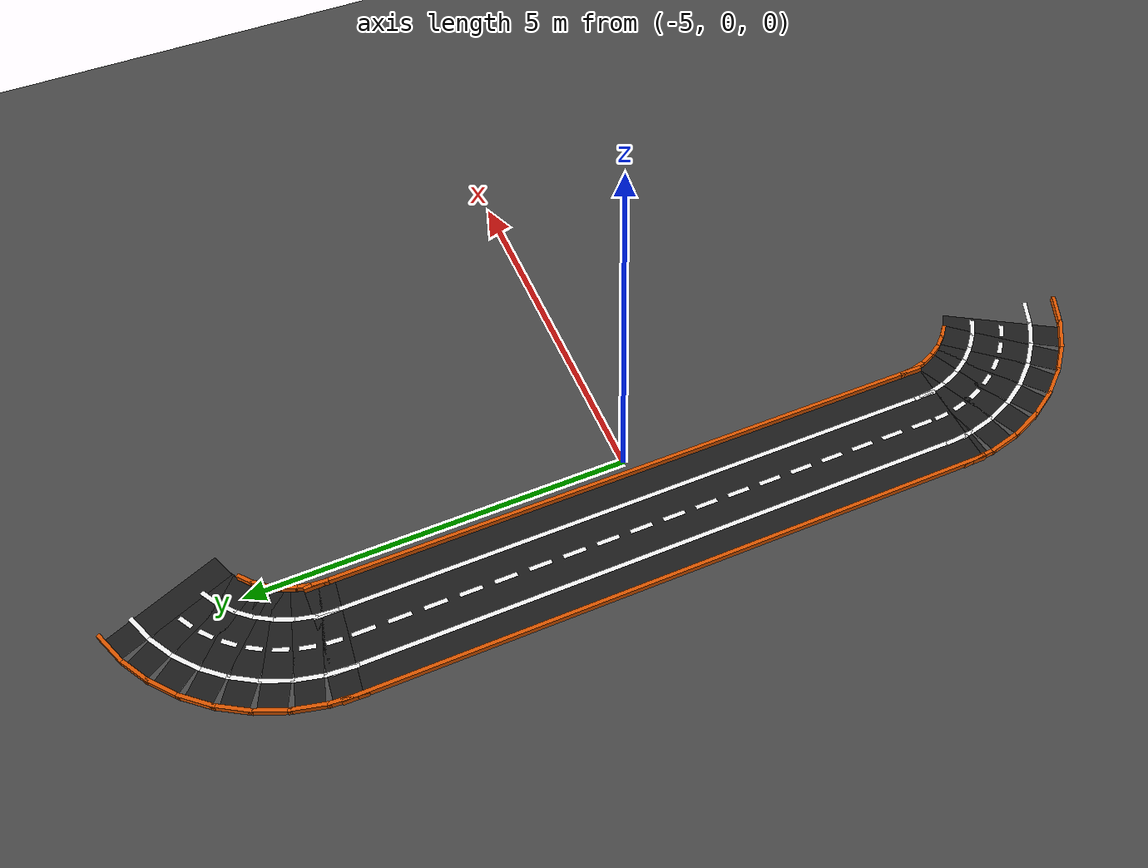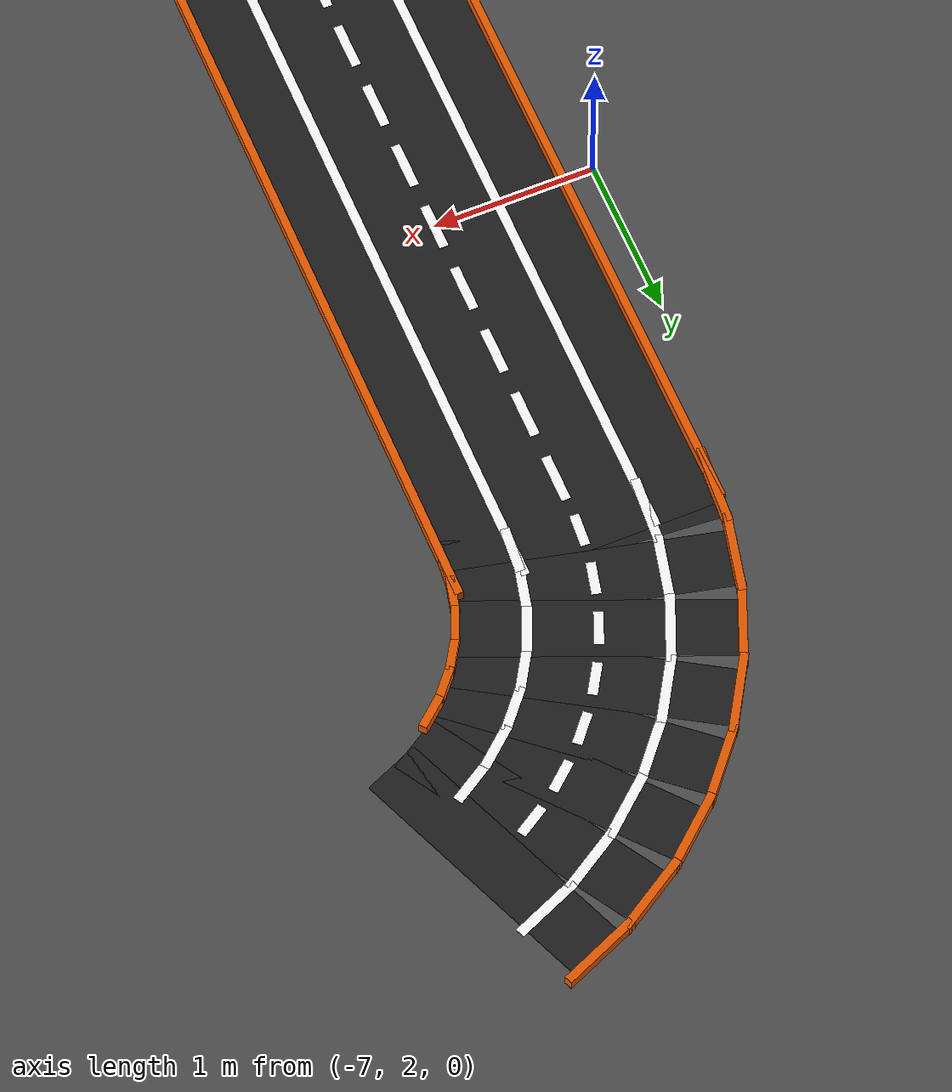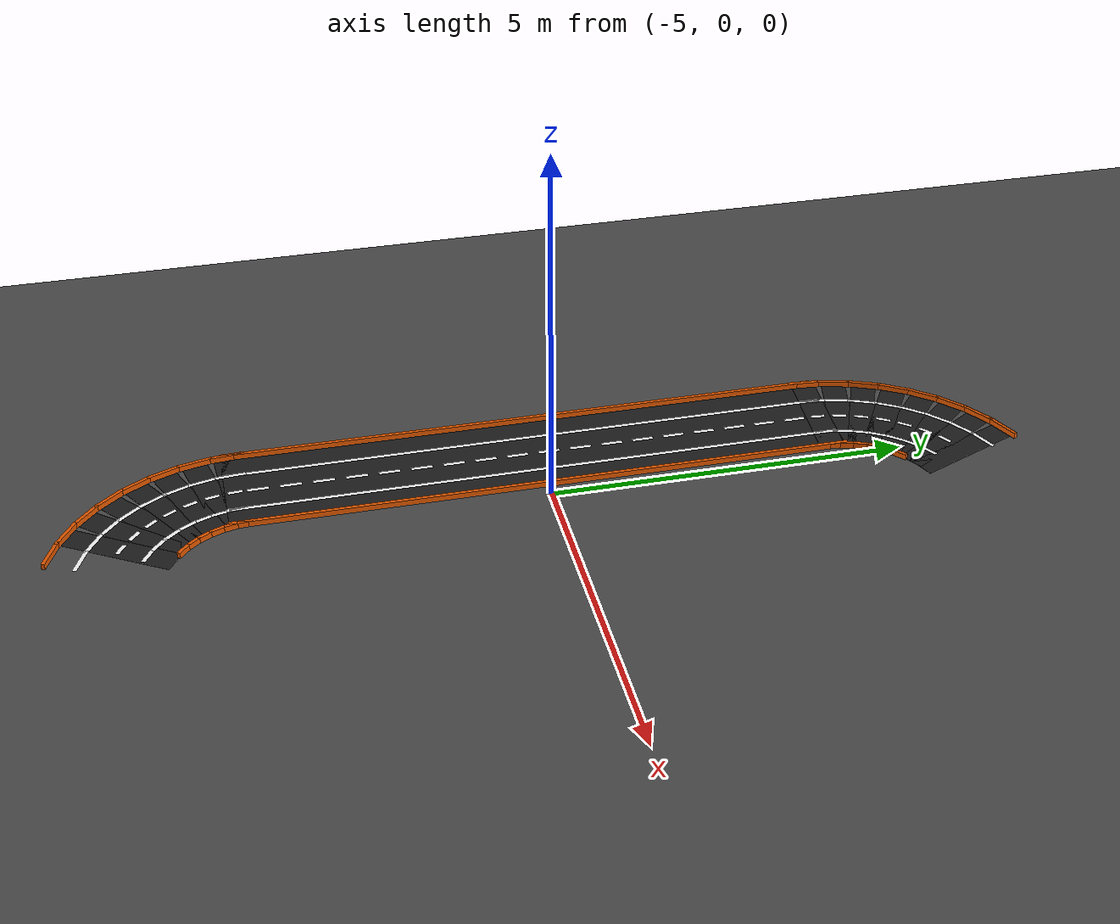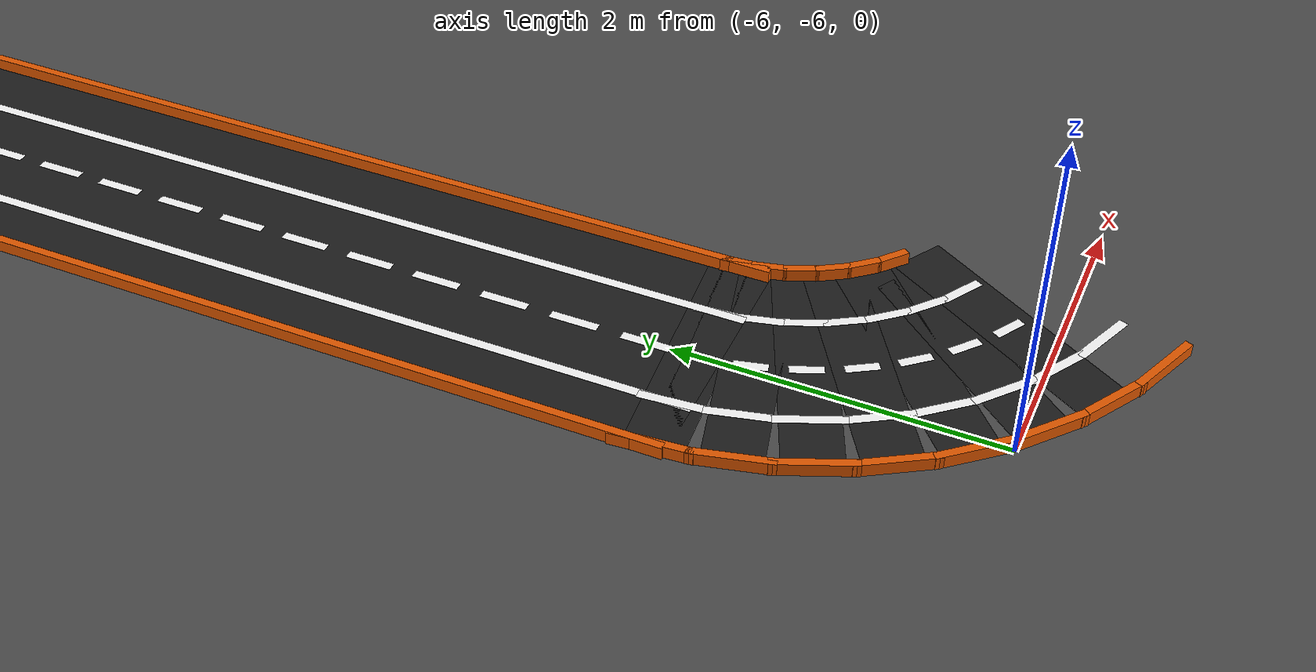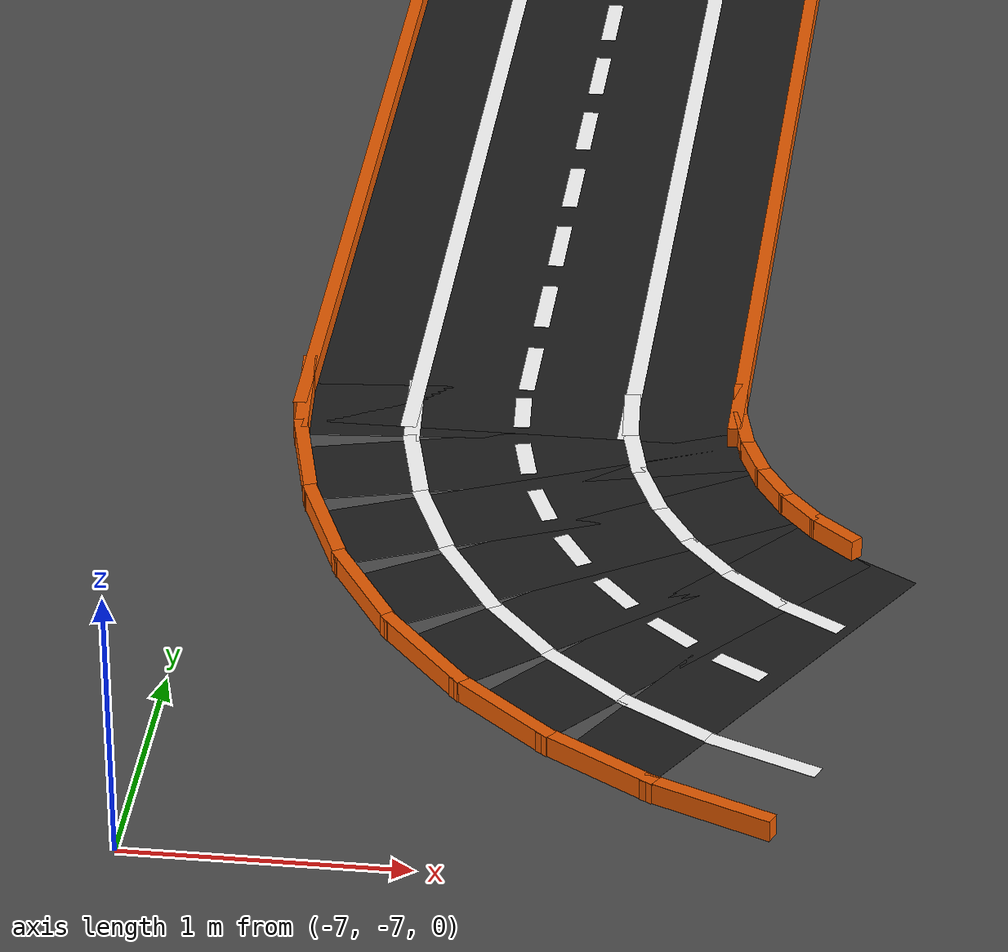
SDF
<sdf version="1.6">
 <world name="qcar_oval">
  <model name="ground_plane">
   <static>true</static>
   <link name="link">
    <collision name="collision">
     <geometry><plane><normal>0 0 1</normal><size>200 200</size></plane></geometry>
    </collision>
    <visual name="visual">
     <geometry><plane><normal>0 0 1</normal><size>200 200</size></plane></geometry>
     <material><ambient>0.3 0.3 0.3 1</ambient><diffuse>0.3 0.3 0.3 1</diffuse></material>
    </visual>
   </link>
  </model>
  <model name="m69">
   <static>true</static>
   <pose>-6.0000 0.0000 0.00100 0 0 0.00000</pose>
   <link name="l">
    <visual name="v">
     <geometry><box><size>1.6000 8.6000 0.0010</size></box></geometry>
     <material><ambient>0.12 0.12 0.12 1</ambient><diffuse>0.12 0.12 0.12 1</diffuse></material>
    </visual>
   </link>
  </model>
  <model name="m70">
   <static>true</static>
   <pose>-5.2000 0.0000 0.04000 0 0 0.00000</pose>
   <link name="l">
    <visual name="v">
     <geometry><box><size>0.0500 8.6000 0.0800</size></box></geometry>
     <material><ambient>0.9 0.35 0.0 1</ambient><diffuse>0.9 0.35 0.0 1</diffuse></material>
    </visual>
   </link>
  </model>
  <model name="m71">
   <static>true</static>
   <pose>-6.8000 0.0000 0.04000 0 0 0.00000</pose>
   <link name="l">
    <visual name="v">
     <geometry><box><size>0.0500 8.6000 0.0800</size></box></geometry>
     <material><ambient>0.9 0.35 0.0 1</ambient><diffuse>0.9 0.35 0.0 1</diffuse></material>
    </visual>
   </link>
  </model>
  <model name="m72">
   <static>true</static>
   <pose>-5.6000 0.0000 0.00200 0 0 0.00000</pose>
   <link name="l">
    <visual name="v">
     <geometry><box><size>0.0600 8.6000 0.0010</size></box></geometry>
     <material><ambient>1 1 1 1</ambient><diffuse>1 1 1 1</diffuse></material>
    </visual>
   </link>
  </model>
  <model name="m73">
   <static>true</static>
   <pose>-6.4000 0.0000 0.00200 0 0 0.00000</pose>
   <link name="l">
    <visual name="v">
     <geometry><box><size>0.0600 8.6000 0.0010</size></box></geometry>
     <material><ambient>1 1 1 1</ambient><diffuse>1 1 1 1</diffuse></material>
    </visual>
   </link>
  </model>
  <model name="m74">
   <static>true</static>
   <pose>-6.0000 -3.8500 0.00200 0 0 0.00000</pose>
   <link name="l">
    <visual name="v">
     <geometry><box><size>0.0600 0.3000 0.0010</size></box></geometry>
     <material><ambient>1 1 1 1</ambient><diffuse>1 1 1 1</diffuse></material>
    </visual>
   </link>
  </model>
  <model name="m75">
   <static>true</static>
   <pose>-6.0000 -3.4000 0.00200 0 0 0.00000</pose>
   <link name="l">
    <visual name="v">
     <geometry><box><size>0.0600 0.3000 0.0010</size></box></geometry>
     <material><ambient>1 1 1 1</ambient><diffuse>1 1 1 1</diffuse></material>
    </visual>
   </link>
  </model>
  <model name="m76">
   <static>true</static>
   <pose>-6.0000 -2.9500 0.00200 0 0 0.00000</pose>
   <link name="l">
    <visual name="v">
     <geometry><box><size>0.0600 0.3000 0.0010</size></box></geometry>
     <material><ambient>1 1 1 1</ambient><diffuse>1 1 1 1</diffuse></material>
    </visual>
   </link>
  </model>
  <model name="m77">
   <static>true</static>
   <pose>-6.0000 -2.5000 0.00200 0 0 0.00000</pose>
   <link name="l">
    <visual name="v">
     <geometry><box><size>0.0600 0.3000 0.0010</size></box></geometry>
     <material><ambient>1 1 1 1</ambient><diffuse>1 1 1 1</diffuse></material>
    </visual>
   </link>
  </model>
  <model name="m78">
   <static>true</static>
   <pose>-6.0000 -2.0500 0.00200 0 0 0.00000</pose>
   <link name="l">
    <visual name="v">
     <geometry><box><size>0.0600 0.3000 0.0010</size></box></geometry>
     <material><ambient>1 1 1 1</ambient><diffuse>1 1 1 1</diffuse></material>
    </visual>
   </link>
  </model>
  <model name="m79">
   <static>true</static>
   <pose>-6.0000 -1.6000 0.00200 0 0 0.00000</pose>
   <link name="l">
    <visual name="v">
     <geometry><box><size>0.0600 0.3000 0.0010</size></box></geometry>
     <material><ambient>1 1 1 1</ambient><diffuse>1 1 1 1</diffuse></material>
    </visual>
   </link>
  </model>
  <model name="m80">
   <static>true</static>
   <pose>-6.0000 -1.1500 0.00200 0 0 0.00000</pose>
   <link name="l">
    <visual name="v">
     <geometry><box><size>0.0600 0.3000 0.0010</size></box></geometry>
     <material><ambient>1 1 1 1</ambient><diffuse>1 1 1 1</diffuse></material>
    </visual>
   </link>
  </model>
  <model name="m81">
   <static>true</static>
   <pose>-6.0000 -0.7000 0.00200 0 0 0.00000</pose>
   <link name="l">
    <visual name="v">
     <geometry><box><size>0.0600 0.3000 0.0010</size></box></geometry>
     <material><ambient>1 1 1 1</ambient><diffuse>1 1 1 1</diffuse></material>
    </visual>
   </link>
  </model>
  <model name="m82">
   <static>true</static>
   <pose>-6.0000 -0.2500 0.00200 0 0 0.00000</pose>
   <link name="l">
    <visual name="v">
     <geometry><box><size>0.0600 0.3000 0.0010</size></box></geometry>
     <material><ambient>1 1 1 1</ambient><diffuse>1 1 1 1</diffuse></material>
    </visual>
   </link>
  </model>
  <model name="m83">
   <static>true</static>
   <pose>-6.0000 0.2000 0.00200 0 0 0.00000</pose>
   <link name="l">
    <visual name="v">
     <geometry><box><size>0.0600 0.3000 0.0010</size></box></geometry>
     <material><ambient>1 1 1 1</ambient><diffuse>1 1 1 1</diffuse></material>
    </visual>
   </link>
  </model>
  <model name="m84">
   <static>true</static>
   <pose>-6.0000 0.6500 0.00200 0 0 0.00000</pose>
   <link name="l">
    <visual name="v">
     <geometry><box><size>0.0600 0.3000 0.0010</size></box></geometry>
     <material><ambient>1 1 1 1</ambient><diffuse>1 1 1 1</diffuse></material>
    </visual>
   </link>
  </model>
  <model name="m85">
   <static>true</static>
   <pose>-6.0000 1.1000 0.00200 0 0 0.00000</pose>
   <link name="l">
    <visual name="v">
     <geometry><box><size>0.0600 0.3000 0.0010</size></box></geometry>
     <material><ambient>1 1 1 1</ambient><diffuse>1 1 1 1</diffuse></material>
    </visual>
   </link>
  </model>
  <model name="m86">
   <static>true</static>
   <pose>-6.0000 1.5500 0.00200 0 0 0.00000</pose>
   <link name="l">
    <visual name="v">
     <geometry><box><size>0.0600 0.3000 0.0010</size></box></geometry>
     <material><ambient>1 1 1 1</ambient><diffuse>1 1 1 1</diffuse></material>
    </visual>
   </link>
  </model>
  <model name="m87">
   <static>true</static>
   <pose>-6.0000 2.0000 0.00200 0 0 0.00000</pose>
   <link name="l">
    <visual name="v">
     <geometry><box><size>0.0600 0.3000 0.0010</size></box></geometry>
     <material><ambient>1 1 1 1</ambient><diffuse>1 1 1 1</diffuse></material>
    </visual>
   </link>
  </model>
  <model name="m88">
   <static>true</static>
   <pose>-6.0000 2.4500 0.00200 0 0 0.00000</pose>
   <link name="l">
    <visual name="v">
     <geometry><box><size>0.0600 0.3000 0.0010</size></box></geometry>
     <material><ambient>1 1 1 1</ambient><diffuse>1 1 1 1</diffuse></material>
    </visual>
   </link>
  </model>
  <model name="m89">
   <static>true</static>
   <pose>-6.0000 2.9000 0.00200 0 0 0.00000</pose>
   <link name="l">
    <visual name="v">
     <geometry><box><size>0.0600 0.3000 0.0010</size></box></geometry>
     <material><ambient>1 1 1 1</ambient><diffuse>1 1 1 1</diffuse></material>
    </visual>
   </link>
  </model>
  <model name="m90">
   <static>true</static>
   <pose>-6.0000 3.3500 0.00200 0 0 0.00000</pose>
   <link name="l">
    <visual name="v">
     <geometry><box><size>0.0600 0.3000 0.0010</size></box></geometry>
     <material><ambient>1 1 1 1</ambient><diffuse>1 1 1 1</diffuse></material>
    </visual>
   </link>
  </model>
  <model name="m91">
   <static>true</static>
   <pose>-6.0000 3.8000 0.00200 0 0 0.00000</pose>
   <link name="l">
    <visual name="v">
     <geometry><box><size>0.0600 0.3000 0.0010</size></box></geometry>
     <material><ambient>1 1 1 1</ambient><diffuse>1 1 1 1</diffuse></material>
    </visual>
   </link>
  </model>
  <model name="m224">
   <static>true</static>
   <pose>-4.7654 5.8478 0.00100 0 0 3.53429</pose>
   <link name="l">
    <visual name="v">
     <geometry><box><size>0.3519 1.6000 0.0010</size></box></geometry>
     <material><ambient>0.12 0.12 0.12 1</ambient><diffuse>0.12 0.12 0.12 1</diffuse></material>
    </visual>
   </link>
  </model>
  <model name="m226">
   <static>true</static>
   <pose>-5.0715 6.5869 0.04000 0 0 3.53429</pose>
   <link name="l">
    <visual name="v">
     <geometry><box><size>0.4926 0.0500 0.0800</size></box></geometry>
     <material><ambient>0.9 0.35 0.0 1</ambient><diffuse>0.9 0.35 0.0 1</diffuse></material>
    </visual>
   </link>
  </model>
  <model name="m228">
   <static>true</static>
   <pose>-4.9184 6.2173 0.00200 0 0 3.53429</pose>
   <link name="l">
    <visual name="v">
     <geometry><box><size>0.4222 0.0600 0.0010</size></box></geometry>
     <material><ambient>1 1 1 1</ambient><diffuse>1 1 1 1</diffuse></material>
    </visual>
   </link>
  </model>
  <model name="m230">
   <static>true</static>
   <pose>-5.0450 5.7053 0.00100 0 0 3.69137</pose>
   <link name="l">
    <visual name="v">
     <geometry><box><size>0.3519 1.6000 0.0010</size></box></geometry>
     <material><ambient>0.12 0.12 0.12 1</ambient><diffuse>0.12 0.12 0.12 1</diffuse></material>
    </visual>
   </link>
  </model>
  <model name="m232">
   <static>true</static>
   <pose>-5.4630 6.3874 0.04000 0 0 3.69137</pose>
   <link name="l">
    <visual name="v">
     <geometry><box><size>0.4926 0.0500 0.0800</size></box></geometry>
     <material><ambient>0.9 0.35 0.0 1</ambient><diffuse>0.9 0.35 0.0 1</diffuse></material>
    </visual>
   </link>
  </model>
  <model name="m233">
   <static>true</static>
   <pose>-4.8360 5.3642 0.00200 0 0 3.69137</pose>
   <link name="l">
    <visual name="v">
     <geometry><box><size>0.2815 0.0600 0.0010</size></box></geometry>
     <material><ambient>1 1 1 1</ambient><diffuse>1 1 1 1</diffuse></material>
    </visual>
   </link>
  </model>
  <model name="m234">
   <static>true</static>
   <pose>-5.2540 6.0463 0.00200 0 0 3.69137</pose>
   <link name="l">
    <visual name="v">
     <geometry><box><size>0.4222 0.0600 0.0010</size></box></geometry>
     <material><ambient>1 1 1 1</ambient><diffuse>1 1 1 1</diffuse></material>
    </visual>
   </link>
  </model>
  <model name="m235">
   <static>true</static>
   <pose>-5.0450 5.7053 0.00200 0 0 3.69137</pose>
   <link name="l">
    <visual name="v">
     <geometry><box><size>0.2042 0.0600 0.0010</size></box></geometry>
     <material><ambient>1 1 1 1</ambient><diffuse>1 1 1 1</diffuse></material>
    </visual>
   </link>
  </model>
  <model name="m236">
   <static>true</static>
   <pose>-5.2989 5.5208 0.00100 0 0 3.84845</pose>
   <link name="l">
    <visual name="v">
     <geometry><box><size>0.3519 1.6000 0.0010</size></box></geometry>
     <material><ambient>0.12 0.12 0.12 1</ambient><diffuse>0.12 0.12 0.12 1</diffuse></material>
    </visual>
   </link>
  </model>
  <model name="m237">
   <static>true</static>
   <pose>-4.7793 4.9125 0.04000 0 0 3.84845</pose>
   <link name="l">
    <visual name="v">
     <geometry><box><size>0.2111 0.0500 0.0800</size></box></geometry>
     <material><ambient>0.9 0.35 0.0 1</ambient><diffuse>0.9 0.35 0.0 1</diffuse></material>
    </visual>
   </link>
  </model>
  <model name="m238">
   <static>true</static>
   <pose>-5.8185 6.1291 0.04000 0 0 3.84845</pose>
   <link name="l">
    <visual name="v">
     <geometry><box><size>0.4926 0.0500 0.0800</size></box></geometry>
     <material><ambient>0.9 0.35 0.0 1</ambient><diffuse>0.9 0.35 0.0 1</diffuse></material>
    </visual>
   </link>
  </model>
  <model name="m239">
   <static>true</static>
   <pose>-5.0391 5.2166 0.00200 0 0 3.84845</pose>
   <link name="l">
    <visual name="v">
     <geometry><box><size>0.2815 0.0600 0.0010</size></box></geometry>
     <material><ambient>1 1 1 1</ambient><diffuse>1 1 1 1</diffuse></material>
    </visual>
   </link>
  </model>
  <model name="m240">
   <static>true</static>
   <pose>-5.5587 5.8250 0.00200 0 0 3.84845</pose>
   <link name="l">
    <visual name="v">
     <geometry><box><size>0.4222 0.0600 0.0010</size></box></geometry>
     <material><ambient>1 1 1 1</ambient><diffuse>1 1 1 1</diffuse></material>
    </visual>
   </link>
  </model>
  <model name="m241">
   <static>true</static>
   <pose>-5.2989 5.5208 0.00200 0 0 3.84845</pose>
   <link name="l">
    <visual name="v">
     <geometry><box><size>0.2042 0.0600 0.0010</size></box></geometry>
     <material><ambient>1 1 1 1</ambient><diffuse>1 1 1 1</diffuse></material>
    </visual>
   </link>
  </model>
  <model name="m242">
   <static>true</static>
   <pose>-5.5208 5.2989 0.00100 0 0 4.00553</pose>
   <link name="l">
    <visual name="v">
     <geometry><box><size>0.3519 1.6000 0.0010</size></box></geometry>
     <material><ambient>0.12 0.12 0.12 1</ambient><diffuse>0.12 0.12 0.12 1</diffuse></material>
    </visual>
   </link>
  </model>
  <model name="m243">
   <static>true</static>
   <pose>-4.9125 4.7793 0.04000 0 0 4.00553</pose>
   <link name="l">
    <visual name="v">
     <geometry><box><size>0.2111 0.0500 0.0800</size></box></geometry>
     <material><ambient>0.9 0.35 0.0 1</ambient><diffuse>0.9 0.35 0.0 1</diffuse></material>
    </visual>
   </link>
  </model>
  <model name="m244">
   <static>true</static>
   <pose>-6.1291 5.8185 0.04000 0 0 4.00553</pose>
   <link name="l">
    <visual name="v">
     <geometry><box><size>0.4926 0.0500 0.0800</size></box></geometry>
     <material><ambient>0.9 0.35 0.0 1</ambient><diffuse>0.9 0.35 0.0 1</diffuse></material>
    </visual>
   </link>
  </model>
  <model name="m245">
   <static>true</static>
   <pose>-5.2166 5.0391 0.00200 0 0 4.00553</pose>
   <link name="l">
    <visual name="v">
     <geometry><box><size>0.2815 0.0600 0.0010</size></box></geometry>
     <material><ambient>1 1 1 1</ambient><diffuse>1 1 1 1</diffuse></material>
    </visual>
   </link>
  </model>
  <model name="m246">
   <static>true</static>
   <pose>-5.8250 5.5587 0.00200 0 0 4.00553</pose>
   <link name="l">
    <visual name="v">
     <geometry><box><size>0.4222 0.0600 0.0010</size></box></geometry>
     <material><ambient>1 1 1 1</ambient><diffuse>1 1 1 1</diffuse></material>
    </visual>
   </link>
  </model>
  <model name="m247">
   <static>true</static>
   <pose>-5.5208 5.2989 0.00200 0 0 4.00553</pose>
   <link name="l">
    <visual name="v">
     <geometry><box><size>0.2042 0.0600 0.0010</size></box></geometry>
     <material><ambient>1 1 1 1</ambient><diffuse>1 1 1 1</diffuse></material>
    </visual>
   </link>
  </model>
  <model name="m248">
   <static>true</static>
   <pose>-5.7053 5.0450 0.00100 0 0 4.16261</pose>
   <link name="l">
    <visual name="v">
     <geometry><box><size>0.3519 1.6000 0.0010</size></box></geometry>
     <material><ambient>0.12 0.12 0.12 1</ambient><diffuse>0.12 0.12 0.12 1</diffuse></material>
    </visual>
   </link>
  </model>
  <model name="m249">
   <static>true</static>
   <pose>-5.0232 4.6270 0.04000 0 0 4.16261</pose>
   <link name="l">
    <visual name="v">
     <geometry><box><size>0.2111 0.0500 0.0800</size></box></geometry>
     <material><ambient>0.9 0.35 0.0 1</ambient><diffuse>0.9 0.35 0.0 1</diffuse></material>
    </visual>
   </link>
  </model>
  <model name="m250">
   <static>true</static>
   <pose>-6.3874 5.4630 0.04000 0 0 4.16261</pose>
   <link name="l">
    <visual name="v">
     <geometry><box><size>0.4926 0.0500 0.0800</size></box></geometry>
     <material><ambient>0.9 0.35 0.0 1</ambient><diffuse>0.9 0.35 0.0 1</diffuse></material>
    </visual>
   </link>
  </model>
  <model name="m251">
   <static>true</static>
   <pose>-5.3642 4.8360 0.00200 0 0 4.16261</pose>
   <link name="l">
    <visual name="v">
     <geometry><box><size>0.2815 0.0600 0.0010</size></box></geometry>
     <material><ambient>1 1 1 1</ambient><diffuse>1 1 1 1</diffuse></material>
    </visual>
   </link>
  </model>
  <model name="m252">
   <static>true</static>
   <pose>-6.0463 5.2540 0.00200 0 0 4.16261</pose>
   <link name="l">
    <visual name="v">
     <geometry><box><size>0.4222 0.0600 0.0010</size></box></geometry>
     <material><ambient>1 1 1 1</ambient><diffuse>1 1 1 1</diffuse></material>
    </visual>
   </link>
  </model>
  <model name="m253">
   <static>true</static>
   <pose>-5.7053 5.0450 0.00200 0 0 4.16261</pose>
   <link name="l">
    <visual name="v">
     <geometry><box><size>0.2042 0.0600 0.0010</size></box></geometry>
     <material><ambient>1 1 1 1</ambient><diffuse>1 1 1 1</diffuse></material>
    </visual>
   </link>
  </model>
  <model name="m254">
   <static>true</static>
   <pose>-5.8478 4.7654 0.00100 0 0 4.31969</pose>
   <link name="l">
    <visual name="v">
     <geometry><box><size>0.3519 1.6000 0.0010</size></box></geometry>
     <material><ambient>0.12 0.12 0.12 1</ambient><diffuse>0.12 0.12 0.12 1</diffuse></material>
    </visual>
   </link>
  </model>
  <model name="m255">
   <static>true</static>
   <pose>-5.1087 4.4592 0.04000 0 0 4.31969</pose>
   <link name="l">
    <visual name="v">
     <geometry><box><size>0.2111 0.0500 0.0800</size></box></geometry>
     <material><ambient>0.9 0.35 0.0 1</ambient><diffuse>0.9 0.35 0.0 1</diffuse></material>
    </visual>
   </link>
  </model>
  <model name="m256">
   <static>true</static>
   <pose>-6.5869 5.0715 0.04000 0 0 4.31969</pose>
   <link name="l">
    <visual name="v">
     <geometry><box><size>0.4926 0.0500 0.0800</size></box></geometry>
     <material><ambient>0.9 0.35 0.0 1</ambient><diffuse>0.9 0.35 0.0 1</diffuse></material>
    </visual>
   </link>
  </model>
  <model name="m257">
   <static>true</static>
   <pose>-5.4782 4.6123 0.00200 0 0 4.31969</pose>
   <link name="l">
    <visual name="v">
     <geometry><box><size>0.2815 0.0600 0.0010</size></box></geometry>
     <material><ambient>1 1 1 1</ambient><diffuse>1 1 1 1</diffuse></material>
    </visual>
   </link>
  </model>
  <model name="m258">
   <static>true</static>
   <pose>-6.2173 4.9184 0.00200 0 0 4.31969</pose>
   <link name="l">
    <visual name="v">
     <geometry><box><size>0.4222 0.0600 0.0010</size></box></geometry>
     <material><ambient>1 1 1 1</ambient><diffuse>1 1 1 1</diffuse></material>
    </visual>
   </link>
  </model>
  <model name="m259">
   <static>true</static>
   <pose>-5.8478 4.7654 0.00200 0 0 4.31969</pose>
   <link name="l">
    <visual name="v">
     <geometry><box><size>0.2042 0.0600 0.0010</size></box></geometry>
     <material><ambient>1 1 1 1</ambient><diffuse>1 1 1 1</diffuse></material>
    </visual>
   </link>
  </model>
  <model name="m260">
   <static>true</static>
   <pose>-5.9447 4.4669 0.00100 0 0 4.47677</pose>
   <link name="l">
    <visual name="v">
     <geometry><box><size>0.3519 1.6000 0.0010</size></box></geometry>
     <material><ambient>0.12 0.12 0.12 1</ambient><diffuse>0.12 0.12 0.12 1</diffuse></material>
    </visual>
   </link>
  </model>
  <model name="m261">
   <static>true</static>
   <pose>-5.1668 4.2801 0.04000 0 0 4.47677</pose>
   <link name="l">
    <visual name="v">
     <geometry><box><size>0.2111 0.0500 0.0800</size></box></geometry>
     <material><ambient>0.9 0.35 0.0 1</ambient><diffuse>0.9 0.35 0.0 1</diffuse></material>
    </visual>
   </link>
  </model>
  <model name="m262">
   <static>true</static>
   <pose>-6.7226 4.6536 0.04000 0 0 4.47677</pose>
   <link name="l">
    <visual name="v">
     <geometry><box><size>0.4926 0.0500 0.0800</size></box></geometry>
     <material><ambient>0.9 0.35 0.0 1</ambient><diffuse>0.9 0.35 0.0 1</diffuse></material>
    </visual>
   </link>
  </model>
  <model name="m263">
   <static>true</static>
   <pose>-5.5558 4.3735 0.00200 0 0 4.47677</pose>
   <link name="l">
    <visual name="v">
     <geometry><box><size>0.2815 0.0600 0.0010</size></box></geometry>
     <material><ambient>1 1 1 1</ambient><diffuse>1 1 1 1</diffuse></material>
    </visual>
   </link>
  </model>
  <model name="m264">
   <static>true</static>
   <pose>-6.3337 4.5603 0.00200 0 0 4.47677</pose>
   <link name="l">
    <visual name="v">
     <geometry><box><size>0.4222 0.0600 0.0010</size></box></geometry>
     <material><ambient>1 1 1 1</ambient><diffuse>1 1 1 1</diffuse></material>
    </visual>
   </link>
  </model>
  <model name="m265">
   <static>true</static>
   <pose>-5.9447 4.4669 0.00200 0 0 4.47677</pose>
   <link name="l">
    <visual name="v">
     <geometry><box><size>0.2042 0.0600 0.0010</size></box></geometry>
     <material><ambient>1 1 1 1</ambient><diffuse>1 1 1 1</diffuse></material>
    </visual>
   </link>
  </model>
  <model name="m266">
   <static>true</static>
   <pose>-5.9938 4.1569 0.00100 0 0 4.63385</pose>
   <link name="l">
    <visual name="v">
     <geometry><box><size>0.3519 1.6000 0.0010</size></box></geometry>
     <material><ambient>0.12 0.12 0.12 1</ambient><diffuse>0.12 0.12 0.12 1</diffuse></material>
    </visual>
   </link>
  </model>
  <model name="m267">
   <static>true</static>
   <pose>-5.1963 4.0942 0.04000 0 0 4.63385</pose>
   <link name="l">
    <visual name="v">
     <geometry><box><size>0.2111 0.0500 0.0800</size></box></geometry>
     <material><ambient>0.9 0.35 0.0 1</ambient><diffuse>0.9 0.35 0.0 1</diffuse></material>
    </visual>
   </link>
  </model>
  <model name="m268">
   <static>true</static>
   <pose>-6.7914 4.2197 0.04000 0 0 4.63385</pose>
   <link name="l">
    <visual name="v">
     <geometry><box><size>0.4926 0.0500 0.0800</size></box></geometry>
     <material><ambient>0.9 0.35 0.0 1</ambient><diffuse>0.9 0.35 0.0 1</diffuse></material>
    </visual>
   </link>
  </model>
  <model name="m269">
   <static>true</static>
   <pose>-5.5951 4.1255 0.00200 0 0 4.63385</pose>
   <link name="l">
    <visual name="v">
     <geometry><box><size>0.2815 0.0600 0.0010</size></box></geometry>
     <material><ambient>1 1 1 1</ambient><diffuse>1 1 1 1</diffuse></material>
    </visual>
   </link>
  </model>
  <model name="m270">
   <static>true</static>
   <pose>-6.3926 4.1883 0.00200 0 0 4.63385</pose>
   <link name="l">
    <visual name="v">
     <geometry><box><size>0.4222 0.0600 0.0010</size></box></geometry>
     <material><ambient>1 1 1 1</ambient><diffuse>1 1 1 1</diffuse></material>
    </visual>
   </link>
  </model>
  <model name="m271">
   <static>true</static>
   <pose>-5.9938 4.1569 0.00200 0 0 4.63385</pose>
   <link name="l">
    <visual name="v">
     <geometry><box><size>0.2042 0.0600 0.0010</size></box></geometry>
     <material><ambient>1 1 1 1</ambient><diffuse>1 1 1 1</diffuse></material>
    </visual>
   </link>
  </model>
  <model name="m272">
   <static>true</static>
   <pose>-5.9938 -4.1569 0.00100 0 0 4.79093</pose>
   <link name="l">
    <visual name="v">
     <geometry><box><size>0.3519 1.6000 0.0010</size></box></geometry>
     <material><ambient>0.12 0.12 0.12 1</ambient><diffuse>0.12 0.12 0.12 1</diffuse></material>
    </visual>
   </link>
  </model>
  <model name="m273">
   <static>true</static>
   <pose>-5.1963 -4.0942 0.04000 0 0 4.79093</pose>
   <link name="l">
    <visual name="v">
     <geometry><box><size>0.2111 0.0500 0.0800</size></box></geometry>
     <material><ambient>0.9 0.35 0.0 1</ambient><diffuse>0.9 0.35 0.0 1</diffuse></material>
    </visual>
   </link>
  </model>
  <model name="m274">
   <static>true</static>
   <pose>-6.7914 -4.2197 0.04000 0 0 4.79093</pose>
   <link name="l">
    <visual name="v">
     <geometry><box><size>0.4926 0.0500 0.0800</size></box></geometry>
     <material><ambient>0.9 0.35 0.0 1</ambient><diffuse>0.9 0.35 0.0 1</diffuse></material>
    </visual>
   </link>
  </model>
  <model name="m275">
   <static>true</static>
   <pose>-5.5951 -4.1255 0.00200 0 0 4.79093</pose>
   <link name="l">
    <visual name="v">
     <geometry><box><size>0.2815 0.0600 0.0010</size></box></geometry>
     <material><ambient>1 1 1 1</ambient><diffuse>1 1 1 1</diffuse></material>
    </visual>
   </link>
  </model>
  <model name="m276">
   <static>true</static>
   <pose>-6.3926 -4.1883 0.00200 0 0 4.79093</pose>
   <link name="l">
    <visual name="v">
     <geometry><box><size>0.4222 0.0600 0.0010</size></box></geometry>
     <material><ambient>1 1 1 1</ambient><diffuse>1 1 1 1</diffuse></material>
    </visual>
   </link>
  </model>
  <model name="m277">
   <static>true</static>
   <pose>-5.9938 -4.1569 0.00200 0 0 4.79093</pose>
   <link name="l">
    <visual name="v">
     <geometry><box><size>0.2042 0.0600 0.0010</size></box></geometry>
     <material><ambient>1 1 1 1</ambient><diffuse>1 1 1 1</diffuse></material>
    </visual>
   </link>
  </model>
  <model name="m278">
   <static>true</static>
   <pose>-5.9447 -4.4669 0.00100 0 0 4.94801</pose>
   <link name="l">
    <visual name="v">
     <geometry><box><size>0.3519 1.6000 0.0010</size></box></geometry>
     <material><ambient>0.12 0.12 0.12 1</ambient><diffuse>0.12 0.12 0.12 1</diffuse></material>
    </visual>
   </link>
  </model>
  <model name="m279">
   <static>true</static>
   <pose>-5.1668 -4.2801 0.04000 0 0 4.94801</pose>
   <link name="l">
    <visual name="v">
     <geometry><box><size>0.2111 0.0500 0.0800</size></box></geometry>
     <material><ambient>0.9 0.35 0.0 1</ambient><diffuse>0.9 0.35 0.0 1</diffuse></material>
    </visual>
   </link>
  </model>
  <model name="m280">
   <static>true</static>
   <pose>-6.7226 -4.6536 0.04000 0 0 4.94801</pose>
   <link name="l">
    <visual name="v">
     <geometry><box><size>0.4926 0.0500 0.0800</size></box></geometry>
     <material><ambient>0.9 0.35 0.0 1</ambient><diffuse>0.9 0.35 0.0 1</diffuse></material>
    </visual>
   </link>
  </model>
  <model name="m281">
   <static>true</static>
   <pose>-5.5558 -4.3735 0.00200 0 0 4.94801</pose>
   <link name="l">
    <visual name="v">
     <geometry><box><size>0.2815 0.0600 0.0010</size></box></geometry>
     <material><ambient>1 1 1 1</ambient><diffuse>1 1 1 1</diffuse></material>
    </visual>
   </link>
  </model>
  <model name="m282">
   <static>true</static>
   <pose>-6.3337 -4.5603 0.00200 0 0 4.94801</pose>
   <link name="l">
    <visual name="v">
     <geometry><box><size>0.4222 0.0600 0.0010</size></box></geometry>
     <material><ambient>1 1 1 1</ambient><diffuse>1 1 1 1</diffuse></material>
    </visual>
   </link>
  </model>
  <model name="m283">
   <static>true</static>
   <pose>-5.9447 -4.4669 0.00200 0 0 4.94801</pose>
   <link name="l">
    <visual name="v">
     <geometry><box><size>0.2042 0.0600 0.0010</size></box></geometry>
     <material><ambient>1 1 1 1</ambient><diffuse>1 1 1 1</diffuse></material>
    </visual>
   </link>
  </model>
  <model name="m284">
   <static>true</static>
   <pose>-5.8478 -4.7654 0.00100 0 0 5.10509</pose>
   <link name="l">
    <visual name="v">
     <geometry><box><size>0.3519 1.6000 0.0010</size></box></geometry>
     <material><ambient>0.12 0.12 0.12 1</ambient><diffuse>0.12 0.12 0.12 1</diffuse></material>
    </visual>
   </link>
  </model>
  <model name="m285">
   <static>true</static>
   <pose>-5.1087 -4.4592 0.04000 0 0 5.10509</pose>
   <link name="l">
    <visual name="v">
     <geometry><box><size>0.2111 0.0500 0.0800</size></box></geometry>
     <material><ambient>0.9 0.35 0.0 1</ambient><diffuse>0.9 0.35 0.0 1</diffuse></material>
    </visual>
   </link>
  </model>
  <model name="m286">
   <static>true</static>
   <pose>-6.5869 -5.0715 0.04000 0 0 5.10509</pose>
   <link name="l">
    <visual name="v">
     <geometry><box><size>0.4926 0.0500 0.0800</size></box></geometry>
     <material><ambient>0.9 0.35 0.0 1</ambient><diffuse>0.9 0.35 0.0 1</diffuse></material>
    </visual>
   </link>
  </model>
  <model name="m287">
   <static>true</static>
   <pose>-5.4782 -4.6123 0.00200 0 0 5.10509</pose>
   <link name="l">
    <visual name="v">
     <geometry><box><size>0.2815 0.0600 0.0010</size></box></geometry>
     <material><ambient>1 1 1 1</ambient><diffuse>1 1 1 1</diffuse></material>
    </visual>
   </link>
  </model>
  <model name="m288">
   <static>true</static>
   <pose>-6.2173 -4.9184 0.00200 0 0 5.10509</pose>
   <link name="l">
    <visual name="v">
     <geometry><box><size>0.4222 0.0600 0.0010</size></box></geometry>
     <material><ambient>1 1 1 1</ambient><diffuse>1 1 1 1</diffuse></material>
    </visual>
   </link>
  </model>
  <model name="m289">
   <static>true</static>
   <pose>-5.8478 -4.7654 0.00200 0 0 5.10509</pose>
   <link name="l">
    <visual name="v">
     <geometry><box><size>0.2042 0.0600 0.0010</size></box></geometry>
     <material><ambient>1 1 1 1</ambient><diffuse>1 1 1 1</diffuse></material>
    </visual>
   </link>
  </model>
  <model name="m290">
   <static>true</static>
   <pose>-5.7053 -5.0450 0.00100 0 0 5.26217</pose>
   <link name="l">
    <visual name="v">
     <geometry><box><size>0.3519 1.6000 0.0010</size></box></geometry>
     <material><ambient>0.12 0.12 0.12 1</ambient><diffuse>0.12 0.12 0.12 1</diffuse></material>
    </visual>
   </link>
  </model>
  <model name="m291">
   <static>true</static>
   <pose>-5.0232 -4.6270 0.04000 0 0 5.26217</pose>
   <link name="l">
    <visual name="v">
     <geometry><box><size>0.2111 0.0500 0.0800</size></box></geometry>
     <material><ambient>0.9 0.35 0.0 1</ambient><diffuse>0.9 0.35 0.0 1</diffuse></material>
    </visual>
   </link>
  </model>
  <model name="m292">
   <static>true</static>
   <pose>-6.3874 -5.4630 0.04000 0 0 5.26217</pose>
   <link name="l">
    <visual name="v">
     <geometry><box><size>0.4926 0.0500 0.0800</size></box></geometry>
     <material><ambient>0.9 0.35 0.0 1</ambient><diffuse>0.9 0.35 0.0 1</diffuse></material>
    </visual>
   </link>
  </model>
  <model name="m293">
   <static>true</static>
   <pose>-5.3642 -4.8360 0.00200 0 0 5.26217</pose>
   <link name="l">
    <visual name="v">
     <geometry><box><size>0.2815 0.0600 0.0010</size></box></geometry>
     <material><ambient>1 1 1 1</ambient><diffuse>1 1 1 1</diffuse></material>
    </visual>
   </link>
  </model>
  <model name="m294">
   <static>true</static>
   <pose>-6.0463 -5.2540 0.00200 0 0 5.26217</pose>
   <link name="l">
    <visual name="v">
     <geometry><box><size>0.4222 0.0600 0.0010</size></box></geometry>
     <material><ambient>1 1 1 1</ambient><diffuse>1 1 1 1</diffuse></material>
    </visual>
   </link>
  </model>
  <model name="m295">
   <static>true</static>
   <pose>-5.7053 -5.0450 0.00200 0 0 5.26217</pose>
   <link name="l">
    <visual name="v">
     <geometry><box><size>0.2042 0.0600 0.0010</size></box></geometry>
     <material><ambient>1 1 1 1</ambient><diffuse>1 1 1 1</diffuse></material>
    </visual>
   </link>
  </model>
  <model name="m296">
   <static>true</static>
   <pose>-5.5208 -5.2989 0.00100 0 0 5.41925</pose>
   <link name="l">
    <visual name="v">
     <geometry><box><size>0.3519 1.6000 0.0010</size></box></geometry>
     <material><ambient>0.12 0.12 0.12 1</ambient><diffuse>0.12 0.12 0.12 1</diffuse></material>
    </visual>
   </link>
  </model>
  <model name="m297">
   <static>true</static>
   <pose>-4.9125 -4.7793 0.04000 0 0 5.41925</pose>
   <link name="l">
    <visual name="v">
     <geometry><box><size>0.2111 0.0500 0.0800</size></box></geometry>
     <material><ambient>0.9 0.35 0.0 1</ambient><diffuse>0.9 0.35 0.0 1</diffuse></material>
    </visual>
   </link>
  </model>
  <model name="m298">
   <static>true</static>
   <pose>-6.1291 -5.8185 0.04000 0 0 5.41925</pose>
   <link name="l">
    <visual name="v">
     <geometry><box><size>0.4926 0.0500 0.0800</size></box></geometry>
     <material><ambient>0.9 0.35 0.0 1</ambient><diffuse>0.9 0.35 0.0 1</diffuse></material>
    </visual>
   </link>
  </model>
  <model name="m299">
   <static>true</static>
   <pose>-5.2166 -5.0391 0.00200 0 0 5.41925</pose>
   <link name="l">
    <visual name="v">
     <geometry><box><size>0.2815 0.0600 0.0010</size></box></geometry>
     <material><ambient>1 1 1 1</ambient><diffuse>1 1 1 1</diffuse></material>
    </visual>
   </link>
  </model>
  <model name="m300">
   <static>true</static>
   <pose>-5.8250 -5.5587 0.00200 0 0 5.41925</pose>
   <link name="l">
    <visual name="v">
     <geometry><box><size>0.4222 0.0600 0.0010</size></box></geometry>
     <material><ambient>1 1 1 1</ambient><diffuse>1 1 1 1</diffuse></material>
    </visual>
   </link>
  </model>
  <model name="m301">
   <static>true</static>
   <pose>-5.5208 -5.2989 0.00200 0 0 5.41925</pose>
   <link name="l">
    <visual name="v">
     <geometry><box><size>0.2042 0.0600 0.0010</size></box></geometry>
     <material><ambient>1 1 1 1</ambient><diffuse>1 1 1 1</diffuse></material>
    </visual>
   </link>
  </model>
  <model name="m302">
   <static>true</static>
   <pose>-5.2989 -5.5208 0.00100 0 0 5.57633</pose>
   <link name="l">
    <visual name="v">
     <geometry><box><size>0.3519 1.6000 0.0010</size></box></geometry>
     <material><ambient>0.12 0.12 0.12 1</ambient><diffuse>0.12 0.12 0.12 1</diffuse></material>
    </visual>
   </link>
  </model>
  <model name="m303">
   <static>true</static>
   <pose>-4.7793 -4.9125 0.04000 0 0 5.57633</pose>
   <link name="l">
    <visual name="v">
     <geometry><box><size>0.2111 0.0500 0.0800</size></box></geometry>
     <material><ambient>0.9 0.35 0.0 1</ambient><diffuse>0.9 0.35 0.0 1</diffuse></material>
    </visual>
   </link>
  </model>
  <model name="m304">
   <static>true</static>
   <pose>-5.8185 -6.1291 0.04000 0 0 5.57633</pose>
   <link name="l">
    <visual name="v">
     <geometry><box><size>0.4926 0.0500 0.0800</size></box></geometry>
     <material><ambient>0.9 0.35 0.0 1</ambient><diffuse>0.9 0.35 0.0 1</diffuse></material>
    </visual>
   </link>
  </model>
  <model name="m305">
   <static>true</static>
   <pose>-5.0391 -5.2166 0.00200 0 0 5.57633</pose>
   <link name="l">
    <visual name="v">
     <geometry><box><size>0.2815 0.0600 0.0010</size></box></geometry>
     <material><ambient>1 1 1 1</ambient><diffuse>1 1 1 1</diffuse></material>
    </visual>
   </link>
  </model>
  <model name="m306">
   <static>true</static>
   <pose>-5.5587 -5.8250 0.00200 0 0 5.57633</pose>
   <link name="l">
    <visual name="v">
     <geometry><box><size>0.4222 0.0600 0.0010</size></box></geometry>
     <material><ambient>1 1 1 1</ambient><diffuse>1 1 1 1</diffuse></material>
    </visual>
   </link>
  </model>
  <model name="m307">
   <static>true</static>
   <pose>-5.2989 -5.5208 0.00200 0 0 5.57633</pose>
   <link name="l">
    <visual name="v">
     <geometry><box><size>0.2042 0.0600 0.0010</size></box></geometry>
     <material><ambient>1 1 1 1</ambient><diffuse>1 1 1 1</diffuse></material>
    </visual>
   </link>
  </model>
  <model name="m308">
   <static>true</static>
   <pose>-5.0450 -5.7053 0.00100 0 0 5.73341</pose>
   <link name="l">
    <visual name="v">
     <geometry><box><size>0.3519 1.6000 0.0010</size></box></geometry>
     <material><ambient>0.12 0.12 0.12 1</ambient><diffuse>0.12 0.12 0.12 1</diffuse></material>
    </visual>
   </link>
  </model>
  <model name="m310">
   <static>true</static>
   <pose>-5.4630 -6.3874 0.04000 0 0 5.73341</pose>
   <link name="l">
    <visual name="v">
     <geometry><box><size>0.4926 0.0500 0.0800</size></box></geometry>
     <material><ambient>0.9 0.35 0.0 1</ambient><diffuse>0.9 0.35 0.0 1</diffuse></material>
    </visual>
   </link>
  </model>
  <model name="m311">
   <static>true</static>
   <pose>-4.8360 -5.3642 0.00200 0 0 5.73341</pose>
   <link name="l">
    <visual name="v">
     <geometry><box><size>0.2815 0.0600 0.0010</size></box></geometry>
     <material><ambient>1 1 1 1</ambient><diffuse>1 1 1 1</diffuse></material>
    </visual>
   </link>
  </model>
  <model name="m312">
   <static>true</static>
   <pose>-5.2540 -6.0463 0.00200 0 0 5.73341</pose>
   <link name="l">
    <visual name="v">
     <geometry><box><size>0.4222 0.0600 0.0010</size></box></geometry>
     <material><ambient>1 1 1 1</ambient><diffuse>1 1 1 1</diffuse></material>
    </visual>
   </link>
  </model>
  <model name="m313">
   <static>true</static>
   <pose>-5.0450 -5.7053 0.00200 0 0 5.73341</pose>
   <link name="l">
    <visual name="v">
     <geometry><box><size>0.2042 0.0600 0.0010</size></box></geometry>
     <material><ambient>1 1 1 1</ambient><diffuse>1 1 1 1</diffuse></material>
    </visual>
   </link>
  </model>
  <model name="m316">
   <static>true</static>
   <pose>-5.0715 -6.5869 0.04000 0 0 5.89049</pose>
   <link name="l">
    <visual name="v">
     <geometry><box><size>0.4926 0.0500 0.0800</size></box></geometry>
     <material><ambient>0.9 0.35 0.0 1</ambient><diffuse>0.9 0.35 0.0 1</diffuse></material>
    </visual>
   </link>
  </model>
  <model name="m318">
   <static>true</static>
   <pose>-4.9184 -6.2173 0.00200 0 0 5.89049</pose>
   <link name="l">
    <visual name="v">
     <geometry><box><size>0.4222 0.0600 0.0010</size></box></geometry>
     <material><ambient>1 1 1 1</ambient><diffuse>1 1 1 1</diffuse></material>
    </visual>
   </link>
  </model>
 </world>
</sdf>
